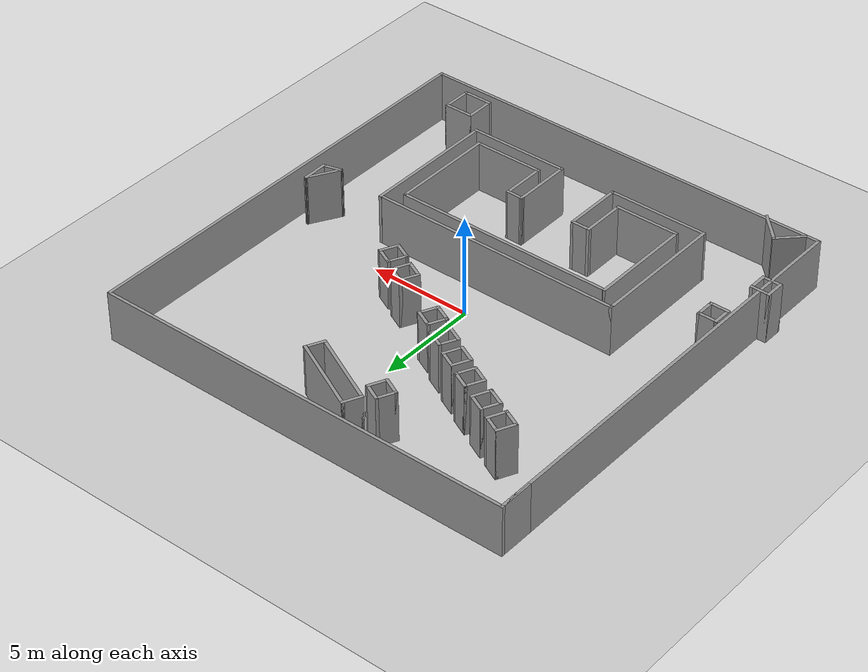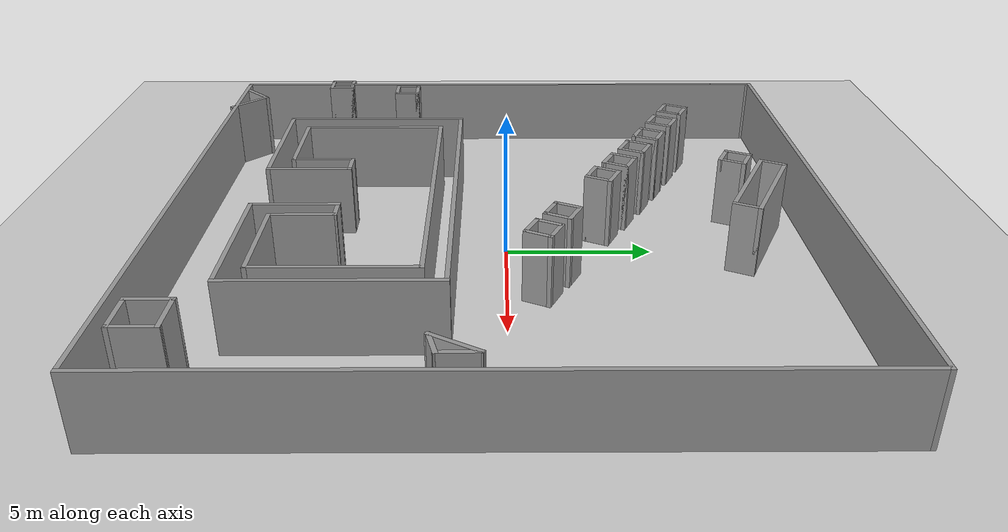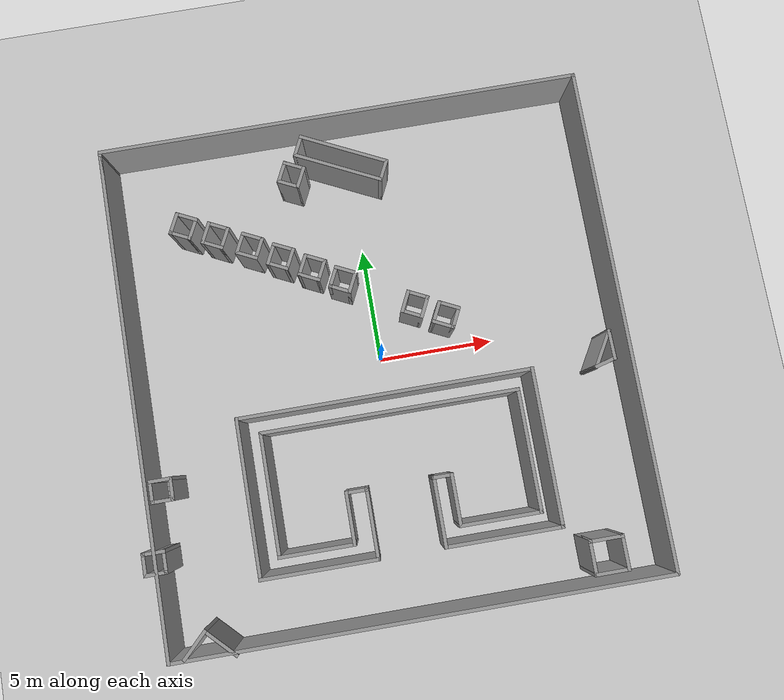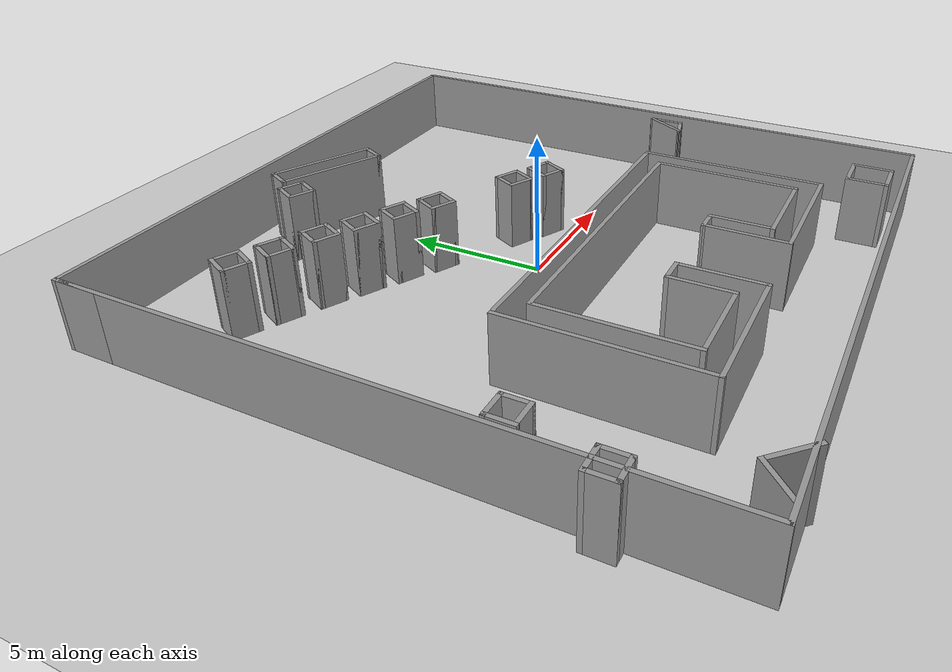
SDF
<sdf version="1.7">
 <world name="default">
  <light name="sun" type="directional">
   <pose>0 0 10 0 -0 0</pose>
   <diffuse>0.8 0.8 0.8 1</diffuse>
   <specular>0.2 0.2 0.2 1</specular>
   <attenuation>
    <range>1000</range>
    <constant>0.9</constant>
    <linear>0.01</linear>
    <quadratic>0.001</quadratic>
   </attenuation>
   <direction>-0.5 0.1 -0.9</direction>
   <spot><inner_angle>0</inner_angle><outer_angle>0</outer_angle><falloff>0</falloff></spot>
  </light>
  <model name="ground_plane">
   <static>1</static>
   <link name="link">
    <collision name="collision">
     <geometry><plane><normal>0 0 1</normal><size>100 100</size></plane></geometry>
     <surface>
      <contact><collide_bitmask>65535</collide_bitmask></contact>
      <friction><ode><mu>100</mu><mu2>50</mu2></ode></friction>
     </surface>
    </collision>
    <visual name="visual">
     <cast_shadows>0</cast_shadows>
     <geometry><plane><normal>0 0 1</normal><size>100 100</size></plane></geometry>
     <material>
      <script><uri>file://media/materials/scripts/gazebo.material</uri><name>Gazebo/Grey</name></script>
     </material>
    </visual>
   </link>
  </model>
  <gravity>0 0 -9.8</gravity>
  <magnetic_field>6e-06 2.3e-05 -4.2e-05</magnetic_field>
  <atmosphere type="adiabatic"/>
  <physics type="ode">
   <max_step_size>0.001</max_step_size>
   <real_time_factor>1</real_time_factor>
   <real_time_update_rate>1000</real_time_update_rate>
  </physics>
  <scene><ambient>0.4 0.4 0.4 1</ambient><background>0.7 0.7 0.7 1</background><shadows>1</shadows></scene>
  <spherical_coordinates>
   <surface_model>EARTH_WGS84</surface_model>
   <latitude_deg>0</latitude_deg>
   <longitude_deg>0</longitude_deg>
   <elevation>0</elevation>
   <heading_deg>0</heading_deg>
  </spherical_coordinates>
  <model name="ushape">
   <pose>-0.15366 -5.01708 0 0 -0 0</pose>
   <link name="Wall_10">
    <collision name="Wall_10_Collision">
     <geometry><box><size>3 0.15 2.5</size></box></geometry>
     <pose>0 0 1.25 0 -0 0</pose>
    </collision>
    <visual name="Wall_10_Visual">
     <pose>0 0 1.25 0 -0 0</pose>
     <geometry><box><size>3 0.15 2.5</size></box></geometry>
     <material>
      <script><uri>file://media/materials/scripts/gazebo.material</uri><name>Gazebo/Grey</name></script>
      <ambient>1 1 1 1</ambient>
     </material>
     <meta><layer>0</layer></meta>
    </visual>
    <pose>1.40095 -1.87068 0 0 -0 -1.5708</pose>
   </link>
   <link name="Wall_13">
    <collision name="Wall_13_Collision">
     <geometry><box><size>5 0.15 2.5</size></box></geometry>
     <pose>0 0 1.25 0 -0 0</pose>
    </collision>
    <visual name="Wall_13_Visual">
     <pose>0 0 1.25 0 -0 0</pose>
     <geometry><box><size>5 0.15 2.5</size></box></geometry>
     <material>
      <script><uri>file://media/materials/scripts/gazebo.material</uri><name>Gazebo/Grey</name></script>
      <ambient>1 1 1 1</ambient>
     </material>
     <meta><layer>0</layer></meta>
    </visual>
    <pose>3.82595 -3.29568 0 0 -0 0</pose>
   </link>
   <link name="Wall_14">
    <collision name="Wall_14_Collision">
     <geometry><box><size>6.75 0.15 2.5</size></box></geometry>
     <pose>0 0 1.25 0 -0 0</pose>
    </collision>
    <visual name="Wall_14_Visual">
     <pose>0 0 1.25 0 -0 0</pose>
     <geometry><box><size>6.75 0.15 2.5</size></box></geometry>
     <material>
      <script><uri>file://media/materials/scripts/gazebo.material</uri><name>Gazebo/Grey</name></script>
      <ambient>1 1 1 1</ambient>
     </material>
     <meta><layer>0</layer></meta>
    </visual>
    <pose>6.25095 0.004322 0 0 -0 1.5708</pose>
   </link>
   <link name="Wall_16">
    <collision name="Wall_16_Collision">
     <geometry><box><size>1 0.15 2.5</size></box></geometry>
     <pose>0 0 1.25 0 -0 0</pose>
    </collision>
    <visual name="Wall_16_Visual">
     <pose>0 0 1.25 0 -0 0</pose>
     <geometry><box><size>1 0.15 2.5</size></box></geometry>
     <material>
      <script><uri>file://media/materials/scripts/gazebo.material</uri><name>Gazebo/Grey</name></script>
      <ambient>1 1 1 1</ambient>
     </material>
     <meta><layer>0</layer></meta>
    </visual>
    <pose>-1.82595 -0.454322 0 0 -0 3.14159</pose>
   </link>
   <link name="Wall_18">
    <collision name="Wall_18_Collision">
     <geometry><box><size>2.25 0.15 2.5</size></box></geometry>
     <pose>0 0 1.25 0 -0 0</pose>
    </collision>
    <visual name="Wall_18_Visual">
     <pose>0 0 1.25 0 -0 0</pose>
     <geometry><box><size>2.25 0.15 2.5</size></box></geometry>
     <material>
      <script><uri>file://media/materials/scripts/gazebo.material</uri><name>Gazebo/Grey</name></script>
      <ambient>1 1 1 1</ambient>
     </material>
     <meta><layer>0</layer></meta>
    </visual>
    <pose>-2.25095 -1.50432 0 0 -0 -1.5708</pose>
   </link>
   <link name="Wall_19">
    <collision name="Wall_19_Collision">
     <geometry><box><size>3.25 0.15 2.5</size></box></geometry>
     <pose>0 0 1.25 0 -0 0</pose>
    </collision>
    <visual name="Wall_19_Visual">
     <pose>0 0 1.25 0 -0 0</pose>
     <geometry><box><size>3.25 0.15 2.5</size></box></geometry>
     <material>
      <script><uri>file://media/materials/scripts/gazebo.material</uri><name>Gazebo/Grey</name></script>
      <ambient>1 1 1 1</ambient>
     </material>
     <meta><layer>0</layer></meta>
    </visual>
    <pose>-3.80095 -2.55432 0 0 -0 3.14159</pose>
   </link>
   <link name="Wall_2">
    <collision name="Wall_2_Collision">
     <geometry><box><size>3 0.15 2.5</size></box></geometry>
     <pose>0 0 1.25 0 -0 0</pose>
    </collision>
    <visual name="Wall_2_Visual">
     <pose>0 0 1.25 0 -0 0</pose>
     <geometry><box><size>3 0.15 2.5</size></box></geometry>
     <material>
      <script><uri>file://media/materials/scripts/gazebo.material</uri><name>Gazebo/Grey</name></script>
      <ambient>1 1 1 1</ambient>
     </material>
     <meta><layer>0</layer></meta>
    </visual>
    <pose>-1.40095 -1.87932 0 0 -0 -1.5708</pose>
   </link>
   <link name="Wall_20">
    <collision name="Wall_20_Collision">
     <geometry><box><size>5.25 0.15 2.5</size></box></geometry>
     <pose>0 0 1.25 0 -0 0</pose>
    </collision>
    <visual name="Wall_20_Visual">
     <pose>0 0 1.25 0 -0 0</pose>
     <geometry><box><size>5.25 0.15 2.5</size></box></geometry>
     <material>
      <script><uri>file://media/materials/scripts/gazebo.material</uri><name>Gazebo/Grey</name></script>
      <ambient>1 1 1 1</ambient>
     </material>
     <meta><layer>0</layer></meta>
    </visual>
    <pose>-5.35095 -0.004322 0 0 -0 1.5708</pose>
   </link>
   <link name="Wall_21">
    <collision name="Wall_21_Collision">
     <geometry><box><size>11 0.15 2.5</size></box></geometry>
     <pose>0 0 1.25 0 -0 0</pose>
    </collision>
    <visual name="Wall_21_Visual">
     <pose>0 0 1.25 0 -0 0</pose>
     <geometry><box><size>11 0.15 2.5</size></box></geometry>
     <material>
      <script><uri>file://media/materials/scripts/gazebo.material</uri><name>Gazebo/Grey</name></script>
      <ambient>1 1 1 1</ambient>
     </material>
     <meta><layer>0</layer></meta>
    </visual>
    <pose>0.074047 2.54568 0 0 -0 0</pose>
   </link>
   <link name="Wall_22">
    <collision name="Wall_22_Collision">
     <geometry><box><size>5.25 0.15 2.5</size></box></geometry>
     <pose>0 0 1.25 0 -0 0</pose>
    </collision>
    <visual name="Wall_22_Visual">
     <pose>0 0 1.25 0 -0 0</pose>
     <geometry><box><size>5.25 0.15 2.5</size></box></geometry>
     <material>
      <script><uri>file://media/materials/scripts/gazebo.material</uri><name>Gazebo/Grey</name></script>
      <ambient>1 1 1 1</ambient>
     </material>
     <meta><layer>0</layer></meta>
    </visual>
    <pose>5.49905 -0.004322 0 0 -0 -1.5708</pose>
   </link>
   <link name="Wall_23">
    <collision name="Wall_23_Collision">
     <geometry><box><size>3.5 0.15 2.5</size></box></geometry>
     <pose>0 0 1.25 0 -0 0</pose>
    </collision>
    <visual name="Wall_23_Visual">
     <pose>0 0 1.25 0 -0 0</pose>
     <geometry><box><size>3.5 0.15 2.5</size></box></geometry>
     <material>
      <script><uri>file://media/materials/scripts/gazebo.material</uri><name>Gazebo/Grey</name></script>
      <ambient>1 1 1 1</ambient>
     </material>
     <meta><layer>0</layer></meta>
    </visual>
    <pose>3.82405 -2.55432 0 0 -0 3.14159</pose>
   </link>
   <link name="Wall_24">
    <collision name="Wall_24_Collision">
     <geometry><box><size>2.25 0.15 2.5</size></box></geometry>
     <pose>0 0 1.25 0 -0 0</pose>
    </collision>
    <visual name="Wall_24_Visual">
     <pose>0 0 1.25 0 -0 0</pose>
     <geometry><box><size>2.25 0.15 2.5</size></box></geometry>
     <material>
      <script><uri>file://media/materials/scripts/gazebo.material</uri><name>Gazebo/Grey</name></script>
      <ambient>1 1 1 1</ambient>
     </material>
     <meta><layer>0</layer></meta>
    </visual>
    <pose>2.14905 -1.50432 0 0 -0 1.5708</pose>
   </link>
   <link name="Wall_25">
    <collision name="Wall_25_Collision">
     <geometry><box><size>0.898144 0.15 2.5</size></box></geometry>
     <pose>0 0 1.25 0 -0 0</pose>
    </collision>
    <visual name="Wall_25_Visual">
     <pose>0 0 1.25 0 -0 0</pose>
     <geometry><box><size>0.898144 0.15 2.5</size></box></geometry>
     <material>
      <script><uri>file://media/materials/scripts/gazebo.material</uri><name>Gazebo/Grey</name></script>
      <ambient>1 1 1 1</ambient>
     </material>
     <meta><layer>0</layer></meta>
    </visual>
    <pose>1.775 -0.45 0 0 -0 3.13004</pose>
   </link>
   <link name="Wall_3">
    <collision name="Wall_3_Collision">
     <geometry><box><size>5 0.15 2.5</size></box></geometry>
     <pose>0 0 1.25 0 -0 0</pose>
    </collision>
    <visual name="Wall_3_Visual">
     <pose>0 0 1.25 0 -0 0</pose>
     <geometry><box><size>5 0.15 2.5</size></box></geometry>
     <material>
      <script><uri>file://media/materials/scripts/gazebo.material</uri><name>Gazebo/Grey</name></script>
      <ambient>1 1 1 1</ambient>
     </material>
     <meta><layer>0</layer></meta>
    </visual>
    <pose>-3.82595 -3.30432 0 0 -0 3.14159</pose>
   </link>
   <link name="Wall_5">
    <collision name="Wall_5_Collision">
     <geometry><box><size>6.75 0.15 2.5</size></box></geometry>
     <pose>0 0 1.25 0 -0 0</pose>
    </collision>
    <visual name="Wall_5_Visual">
     <pose>0 0 1.25 0 -0 0</pose>
     <geometry><box><size>6.75 0.15 2.5</size></box></geometry>
     <material>
      <script><uri>file://media/materials/scripts/gazebo.material</uri><name>Gazebo/Grey</name></script>
      <ambient>1 1 1 1</ambient>
     </material>
     <meta><layer>0</layer></meta>
    </visual>
    <pose>-6.25095 -0.004322 0 0 -0 1.5708</pose>
   </link>
   <link name="Wall_6">
    <collision name="Wall_6_Collision">
     <geometry><box><size>12.5 0.15 2.5</size></box></geometry>
     <pose>0 0 1.25 0 -0 0</pose>
    </collision>
    <visual name="Wall_6_Visual">
     <pose>0 0 1.25 0 -0 0</pose>
     <geometry><box><size>12.5 0.15 2.5</size></box></geometry>
     <material>
      <script><uri>file://media/materials/scripts/gazebo.material</uri><name>Gazebo/Grey</name></script>
      <ambient>1 1 1 1</ambient>
     </material>
     <meta><layer>0</layer></meta>
    </visual>
    <pose>-0.075953 3.29568 0 0 -0 0</pose>
   </link>
   <static>1</static>
  </model>
  <model name="box1m_clone">
   <pose>-2.54909 5.40798 0 0 0 -0.45328</pose>
   <link name="Wall_0">
    <collision name="Wall_0_Collision">
     <geometry><box><size>1 0.15 2.5</size></box></geometry>
     <pose>0 0 1.25 0 -0 0</pose>
    </collision>
    <visual name="Wall_0_Visual">
     <pose>0 0 1.25 0 -0 0</pose>
     <geometry><box><size>1 0.15 2.5</size></box></geometry>
     <material>
      <script><uri>file://media/materials/scripts/gazebo.material</uri><name>Gazebo/Grey</name></script>
      <ambient>1 1 1 1</ambient>
     </material>
     <meta><layer>0</layer></meta>
    </visual>
    <pose>-1.0425 -0.9775 0 0 -0 -1.5708</pose>
   </link>
   <link name="Wall_1">
    <collision name="Wall_1_Collision">
     <geometry><box><size>1 0.15 2.5</size></box></geometry>
     <pose>0 0 1.25 0 -0 0</pose>
    </collision>
    <visual name="Wall_1_Visual">
     <pose>0 0 1.25 0 -0 0</pose>
     <geometry><box><size>1 0.15 2.5</size></box></geometry>
     <material>
      <script><uri>file://media/materials/scripts/gazebo.material</uri><name>Gazebo/Grey</name></script>
      <ambient>1 1 1 1</ambient>
     </material>
     <meta><layer>0</layer></meta>
    </visual>
    <pose>-0.6175 -1.4025 0 0 -0 0</pose>
   </link>
   <link name="Wall_2">
    <collision name="Wall_2_Collision">
     <geometry><box><size>1 0.15 2.5</size></box></geometry>
     <pose>0 0 1.25 0 -0 0</pose>
    </collision>
    <visual name="Wall_2_Visual">
     <pose>0 0 1.25 0 -0 0</pose>
     <geometry><box><size>1 0.15 2.5</size></box></geometry>
     <material>
      <script><uri>file://media/materials/scripts/gazebo.material</uri><name>Gazebo/Grey</name></script>
      <ambient>1 1 1 1</ambient>
     </material>
     <meta><layer>0</layer></meta>
    </visual>
    <pose>-0.1925 -0.9775 0 0 -0 1.5708</pose>
   </link>
   <link name="Wall_3">
    <collision name="Wall_3_Collision">
     <geometry><box><size>1 0.15 2.5</size></box></geometry>
     <pose>0 0 1.25 0 -0 0</pose>
    </collision>
    <visual name="Wall_3_Visual">
     <pose>0 0 1.25 0 -0 0</pose>
     <geometry><box><size>1 0.15 2.5</size></box></geometry>
     <material>
      <script><uri>file://media/materials/scripts/gazebo.material</uri><name>Gazebo/Grey</name></script>
      <ambient>1 1 1 1</ambient>
     </material>
     <meta><layer>0</layer></meta>
    </visual>
    <pose>-0.6175 -0.5525 0 0 -0 3.14159</pose>
   </link>
   <static>1</static>
  </model>
  <model name="box1m_clone_clone">
   <pose>-3.78041 6.08694 0 0 0 -0.45328</pose>
   <link name="Wall_0">
    <collision name="Wall_0_Collision">
     <geometry><box><size>1 0.15 2.5</size></box></geometry>
     <pose>0 0 1.25 0 -0 0</pose>
    </collision>
    <visual name="Wall_0_Visual">
     <pose>0 0 1.25 0 -0 0</pose>
     <geometry><box><size>1 0.15 2.5</size></box></geometry>
     <material>
      <script><uri>file://media/materials/scripts/gazebo.material</uri><name>Gazebo/Grey</name></script>
      <ambient>1 1 1 1</ambient>
     </material>
     <meta><layer>0</layer></meta>
    </visual>
    <pose>-1.0425 -0.9775 0 0 -0 -1.5708</pose>
   </link>
   <link name="Wall_1">
    <collision name="Wall_1_Collision">
     <geometry><box><size>1 0.15 2.5</size></box></geometry>
     <pose>0 0 1.25 0 -0 0</pose>
    </collision>
    <visual name="Wall_1_Visual">
     <pose>0 0 1.25 0 -0 0</pose>
     <geometry><box><size>1 0.15 2.5</size></box></geometry>
     <material>
      <script><uri>file://media/materials/scripts/gazebo.material</uri><name>Gazebo/Grey</name></script>
      <ambient>1 1 1 1</ambient>
     </material>
     <meta><layer>0</layer></meta>
    </visual>
    <pose>-0.6175 -1.4025 0 0 -0 0</pose>
   </link>
   <link name="Wall_2">
    <collision name="Wall_2_Collision">
     <geometry><box><size>1 0.15 2.5</size></box></geometry>
     <pose>0 0 1.25 0 -0 0</pose>
    </collision>
    <visual name="Wall_2_Visual">
     <pose>0 0 1.25 0 -0 0</pose>
     <geometry><box><size>1 0.15 2.5</size></box></geometry>
     <material>
      <script><uri>file://media/materials/scripts/gazebo.material</uri><name>Gazebo/Grey</name></script>
      <ambient>1 1 1 1</ambient>
     </material>
     <meta><layer>0</layer></meta>
    </visual>
    <pose>-0.1925 -0.9775 0 0 -0 1.5708</pose>
   </link>
   <link name="Wall_3">
    <collision name="Wall_3_Collision">
     <geometry><box><size>1 0.15 2.5</size></box></geometry>
     <pose>0 0 1.25 0 -0 0</pose>
    </collision>
    <visual name="Wall_3_Visual">
     <pose>0 0 1.25 0 -0 0</pose>
     <geometry><box><size>1 0.15 2.5</size></box></geometry>
     <material>
      <script><uri>file://media/materials/scripts/gazebo.material</uri><name>Gazebo/Grey</name></script>
      <ambient>1 1 1 1</ambient>
     </material>
     <meta><layer>0</layer></meta>
    </visual>
    <pose>-0.6175 -0.5525 0 0 -0 3.14159</pose>
   </link>
   <static>1</static>
  </model>
  <model name="box1m_clone_clone_0">
   <pose>-5.15726 6.78051 0 0 0 -0.45328</pose>
   <link name="Wall_0">
    <collision name="Wall_0_Collision">
     <geometry><box><size>1 0.15 2.5</size></box></geometry>
     <pose>0 0 1.25 0 -0 0</pose>
    </collision>
    <visual name="Wall_0_Visual">
     <pose>0 0 1.25 0 -0 0</pose>
     <geometry><box><size>1 0.15 2.5</size></box></geometry>
     <material>
      <script><uri>file://media/materials/scripts/gazebo.material</uri><name>Gazebo/Grey</name></script>
      <ambient>1 1 1 1</ambient>
     </material>
     <meta><layer>0</layer></meta>
    </visual>
    <pose>-1.0425 -0.9775 0 0 -0 -1.5708</pose>
   </link>
   <link name="Wall_1">
    <collision name="Wall_1_Collision">
     <geometry><box><size>1 0.15 2.5</size></box></geometry>
     <pose>0 0 1.25 0 -0 0</pose>
    </collision>
    <visual name="Wall_1_Visual">
     <pose>0 0 1.25 0 -0 0</pose>
     <geometry><box><size>1 0.15 2.5</size></box></geometry>
     <material>
      <script><uri>file://media/materials/scripts/gazebo.material</uri><name>Gazebo/Grey</name></script>
      <ambient>1 1 1 1</ambient>
     </material>
     <meta><layer>0</layer></meta>
    </visual>
    <pose>-0.6175 -1.4025 0 0 -0 0</pose>
   </link>
   <link name="Wall_2">
    <collision name="Wall_2_Collision">
     <geometry><box><size>1 0.15 2.5</size></box></geometry>
     <pose>0 0 1.25 0 -0 0</pose>
    </collision>
    <visual name="Wall_2_Visual">
     <pose>0 0 1.25 0 -0 0</pose>
     <geometry><box><size>1 0.15 2.5</size></box></geometry>
     <material>
      <script><uri>file://media/materials/scripts/gazebo.material</uri><name>Gazebo/Grey</name></script>
      <ambient>1 1 1 1</ambient>
     </material>
     <meta><layer>0</layer></meta>
    </visual>
    <pose>-0.1925 -0.9775 0 0 -0 1.5708</pose>
   </link>
   <link name="Wall_3">
    <collision name="Wall_3_Collision">
     <geometry><box><size>1 0.15 2.5</size></box></geometry>
     <pose>0 0 1.25 0 -0 0</pose>
    </collision>
    <visual name="Wall_3_Visual">
     <pose>0 0 1.25 0 -0 0</pose>
     <geometry><box><size>1 0.15 2.5</size></box></geometry>
     <material>
      <script><uri>file://media/materials/scripts/gazebo.material</uri><name>Gazebo/Grey</name></script>
      <ambient>1 1 1 1</ambient>
     </material>
     <meta><layer>0</layer></meta>
    </visual>
    <pose>-0.6175 -0.5525 0 0 -0 3.14159</pose>
   </link>
   <static>1</static>
  </model>
  <model name="box1m_clone_clone_1">
   <pose>-1.3059 4.70204 0 0 0 -0.45328</pose>
   <link name="Wall_0">
    <collision name="Wall_0_Collision">
     <geometry><box><size>1 0.15 2.5</size></box></geometry>
     <pose>0 0 1.25 0 -0 0</pose>
    </collision>
    <visual name="Wall_0_Visual">
     <pose>0 0 1.25 0 -0 0</pose>
     <geometry><box><size>1 0.15 2.5</size></box></geometry>
     <material>
      <script><uri>file://media/materials/scripts/gazebo.material</uri><name>Gazebo/Grey</name></script>
      <ambient>1 1 1 1</ambient>
     </material>
     <meta><layer>0</layer></meta>
    </visual>
    <pose>-1.0425 -0.9775 0 0 -0 -1.5708</pose>
   </link>
   <link name="Wall_1">
    <collision name="Wall_1_Collision">
     <geometry><box><size>1 0.15 2.5</size></box></geometry>
     <pose>0 0 1.25 0 -0 0</pose>
    </collision>
    <visual name="Wall_1_Visual">
     <pose>0 0 1.25 0 -0 0</pose>
     <geometry><box><size>1 0.15 2.5</size></box></geometry>
     <material>
      <script><uri>file://media/materials/scripts/gazebo.material</uri><name>Gazebo/Grey</name></script>
      <ambient>1 1 1 1</ambient>
     </material>
     <meta><layer>0</layer></meta>
    </visual>
    <pose>-0.6175 -1.4025 0 0 -0 0</pose>
   </link>
   <link name="Wall_2">
    <collision name="Wall_2_Collision">
     <geometry><box><size>1 0.15 2.5</size></box></geometry>
     <pose>0 0 1.25 0 -0 0</pose>
    </collision>
    <visual name="Wall_2_Visual">
     <pose>0 0 1.25 0 -0 0</pose>
     <geometry><box><size>1 0.15 2.5</size></box></geometry>
     <material>
      <script><uri>file://media/materials/scripts/gazebo.material</uri><name>Gazebo/Grey</name></script>
      <ambient>1 1 1 1</ambient>
     </material>
     <meta><layer>0</layer></meta>
    </visual>
    <pose>-0.1925 -0.9775 0 0 -0 1.5708</pose>
   </link>
   <link name="Wall_3">
    <collision name="Wall_3_Collision">
     <geometry><box><size>1 0.15 2.5</size></box></geometry>
     <pose>0 0 1.25 0 -0 0</pose>
    </collision>
    <visual name="Wall_3_Visual">
     <pose>0 0 1.25 0 -0 0</pose>
     <geometry><box><size>1 0.15 2.5</size></box></geometry>
     <material>
      <script><uri>file://media/materials/scripts/gazebo.material</uri><name>Gazebo/Grey</name></script>
      <ambient>1 1 1 1</ambient>
     </material>
     <meta><layer>0</layer></meta>
    </visual>
    <pose>-0.6175 -0.5525 0 0 -0 3.14159</pose>
   </link>
   <static>1</static>
  </model>
  <model name="box1m_clone_clone_2">
   <pose>-0.098733 3.97879 0 0 0 -0.45328</pose>
   <link name="Wall_0">
    <collision name="Wall_0_Collision">
     <geometry><box><size>1 0.15 2.5</size></box></geometry>
     <pose>0 0 1.25 0 -0 0</pose>
    </collision>
    <visual name="Wall_0_Visual">
     <pose>0 0 1.25 0 -0 0</pose>
     <geometry><box><size>1 0.15 2.5</size></box></geometry>
     <material>
      <script><uri>file://media/materials/scripts/gazebo.material</uri><name>Gazebo/Grey</name></script>
      <ambient>1 1 1 1</ambient>
     </material>
     <meta><layer>0</layer></meta>
    </visual>
    <pose>-1.0425 -0.9775 0 0 -0 -1.5708</pose>
   </link>
   <link name="Wall_1">
    <collision name="Wall_1_Collision">
     <geometry><box><size>1 0.15 2.5</size></box></geometry>
     <pose>0 0 1.25 0 -0 0</pose>
    </collision>
    <visual name="Wall_1_Visual">
     <pose>0 0 1.25 0 -0 0</pose>
     <geometry><box><size>1 0.15 2.5</size></box></geometry>
     <material>
      <script><uri>file://media/materials/scripts/gazebo.material</uri><name>Gazebo/Grey</name></script>
      <ambient>1 1 1 1</ambient>
     </material>
     <meta><layer>0</layer></meta>
    </visual>
    <pose>-0.6175 -1.4025 0 0 -0 0</pose>
   </link>
   <link name="Wall_2">
    <collision name="Wall_2_Collision">
     <geometry><box><size>1 0.15 2.5</size></box></geometry>
     <pose>0 0 1.25 0 -0 0</pose>
    </collision>
    <visual name="Wall_2_Visual">
     <pose>0 0 1.25 0 -0 0</pose>
     <geometry><box><size>1 0.15 2.5</size></box></geometry>
     <material>
      <script><uri>file://media/materials/scripts/gazebo.material</uri><name>Gazebo/Grey</name></script>
      <ambient>1 1 1 1</ambient>
     </material>
     <meta><layer>0</layer></meta>
    </visual>
    <pose>-0.1925 -0.9775 0 0 -0 1.5708</pose>
   </link>
   <link name="Wall_3">
    <collision name="Wall_3_Collision">
     <geometry><box><size>1 0.15 2.5</size></box></geometry>
     <pose>0 0 1.25 0 -0 0</pose>
    </collision>
    <visual name="Wall_3_Visual">
     <pose>0 0 1.25 0 -0 0</pose>
     <geometry><box><size>1 0.15 2.5</size></box></geometry>
     <material>
      <script><uri>file://media/materials/scripts/gazebo.material</uri><name>Gazebo/Grey</name></script>
      <ambient>1 1 1 1</ambient>
     </material>
     <meta><layer>0</layer></meta>
    </visual>
    <pose>-0.6175 -0.5525 0 0 -0 3.14159</pose>
   </link>
   <static>1</static>
  </model>
  <model name="box1m_clone_clone_3">
   <pose>-6.43952 7.41383 0 0 0 -0.45328</pose>
   <link name="Wall_0">
    <collision name="Wall_0_Collision">
     <geometry><box><size>1 0.15 2.5</size></box></geometry>
     <pose>0 0 1.25 0 -0 0</pose>
    </collision>
    <visual name="Wall_0_Visual">
     <pose>0 0 1.25 0 -0 0</pose>
     <geometry><box><size>1 0.15 2.5</size></box></geometry>
     <material>
      <script><uri>file://media/materials/scripts/gazebo.material</uri><name>Gazebo/Grey</name></script>
      <ambient>1 1 1 1</ambient>
     </material>
     <meta><layer>0</layer></meta>
    </visual>
    <pose>-1.0425 -0.9775 0 0 -0 -1.5708</pose>
   </link>
   <link name="Wall_1">
    <collision name="Wall_1_Collision">
     <geometry><box><size>1 0.15 2.5</size></box></geometry>
     <pose>0 0 1.25 0 -0 0</pose>
    </collision>
    <visual name="Wall_1_Visual">
     <pose>0 0 1.25 0 -0 0</pose>
     <geometry><box><size>1 0.15 2.5</size></box></geometry>
     <material>
      <script><uri>file://media/materials/scripts/gazebo.material</uri><name>Gazebo/Grey</name></script>
      <ambient>1 1 1 1</ambient>
     </material>
     <meta><layer>0</layer></meta>
    </visual>
    <pose>-0.6175 -1.4025 0 0 -0 0</pose>
   </link>
   <link name="Wall_2">
    <collision name="Wall_2_Collision">
     <geometry><box><size>1 0.15 2.5</size></box></geometry>
     <pose>0 0 1.25 0 -0 0</pose>
    </collision>
    <visual name="Wall_2_Visual">
     <pose>0 0 1.25 0 -0 0</pose>
     <geometry><box><size>1 0.15 2.5</size></box></geometry>
     <material>
      <script><uri>file://media/materials/scripts/gazebo.material</uri><name>Gazebo/Grey</name></script>
      <ambient>1 1 1 1</ambient>
     </material>
     <meta><layer>0</layer></meta>
    </visual>
    <pose>-0.1925 -0.9775 0 0 -0 1.5708</pose>
   </link>
   <link name="Wall_3">
    <collision name="Wall_3_Collision">
     <geometry><box><size>1 0.15 2.5</size></box></geometry>
     <pose>0 0 1.25 0 -0 0</pose>
    </collision>
    <visual name="Wall_3_Visual">
     <pose>0 0 1.25 0 -0 0</pose>
     <geometry><box><size>1 0.15 2.5</size></box></geometry>
     <material>
      <script><uri>file://media/materials/scripts/gazebo.material</uri><name>Gazebo/Grey</name></script>
      <ambient>1 1 1 1</ambient>
     </material>
     <meta><layer>0</layer></meta>
    </visual>
    <pose>-0.6175 -0.5525 0 0 -0 3.14159</pose>
   </link>
   <static>1</static>
  </model>
  <model name="box1m_clone_clone_4">
   <pose>2.73002 2.41831 0 0 0 -0.45328</pose>
   <link name="Wall_0">
    <collision name="Wall_0_Collision">
     <geometry><box><size>1 0.15 2.5</size></box></geometry>
     <pose>0 0 1.25 0 -0 0</pose>
    </collision>
    <visual name="Wall_0_Visual">
     <pose>0 0 1.25 0 -0 0</pose>
     <geometry><box><size>1 0.15 2.5</size></box></geometry>
     <material>
      <script><uri>file://media/materials/scripts/gazebo.material</uri><name>Gazebo/Grey</name></script>
      <ambient>1 1 1 1</ambient>
     </material>
     <meta><layer>0</layer></meta>
    </visual>
    <pose>-1.0425 -0.9775 0 0 -0 -1.5708</pose>
   </link>
   <link name="Wall_1">
    <collision name="Wall_1_Collision">
     <geometry><box><size>1 0.15 2.5</size></box></geometry>
     <pose>0 0 1.25 0 -0 0</pose>
    </collision>
    <visual name="Wall_1_Visual">
     <pose>0 0 1.25 0 -0 0</pose>
     <geometry><box><size>1 0.15 2.5</size></box></geometry>
     <material>
      <script><uri>file://media/materials/scripts/gazebo.material</uri><name>Gazebo/Grey</name></script>
      <ambient>1 1 1 1</ambient>
     </material>
     <meta><layer>0</layer></meta>
    </visual>
    <pose>-0.6175 -1.4025 0 0 -0 0</pose>
   </link>
   <link name="Wall_2">
    <collision name="Wall_2_Collision">
     <geometry><box><size>1 0.15 2.5</size></box></geometry>
     <pose>0 0 1.25 0 -0 0</pose>
    </collision>
    <visual name="Wall_2_Visual">
     <pose>0 0 1.25 0 -0 0</pose>
     <geometry><box><size>1 0.15 2.5</size></box></geometry>
     <material>
      <script><uri>file://media/materials/scripts/gazebo.material</uri><name>Gazebo/Grey</name></script>
      <ambient>1 1 1 1</ambient>
     </material>
     <meta><layer>0</layer></meta>
    </visual>
    <pose>-0.1925 -0.9775 0 0 -0 1.5708</pose>
   </link>
   <link name="Wall_3">
    <collision name="Wall_3_Collision">
     <geometry><box><size>1 0.15 2.5</size></box></geometry>
     <pose>0 0 1.25 0 -0 0</pose>
    </collision>
    <visual name="Wall_3_Visual">
     <pose>0 0 1.25 0 -0 0</pose>
     <geometry><box><size>1 0.15 2.5</size></box></geometry>
     <material>
      <script><uri>file://media/materials/scripts/gazebo.material</uri><name>Gazebo/Grey</name></script>
      <ambient>1 1 1 1</ambient>
     </material>
     <meta><layer>0</layer></meta>
    </visual>
    <pose>-0.6175 -0.5525 0 0 -0 3.14159</pose>
   </link>
   <static>1</static>
  </model>
  <model name="box1m_clone_clone_5">
   <pose>3.94843 1.74701 0 0 0 -0.45328</pose>
   <link name="Wall_0">
    <collision name="Wall_0_Collision">
     <geometry><box><size>1 0.15 2.5</size></box></geometry>
     <pose>0 0 1.25 0 -0 0</pose>
    </collision>
    <visual name="Wall_0_Visual">
     <pose>0 0 1.25 0 -0 0</pose>
     <geometry><box><size>1 0.15 2.5</size></box></geometry>
     <material>
      <script><uri>file://media/materials/scripts/gazebo.material</uri><name>Gazebo/Grey</name></script>
      <ambient>1 1 1 1</ambient>
     </material>
     <meta><layer>0</layer></meta>
    </visual>
    <pose>-1.0425 -0.9775 0 0 -0 -1.5708</pose>
   </link>
   <link name="Wall_1">
    <collision name="Wall_1_Collision">
     <geometry><box><size>1 0.15 2.5</size></box></geometry>
     <pose>0 0 1.25 0 -0 0</pose>
    </collision>
    <visual name="Wall_1_Visual">
     <pose>0 0 1.25 0 -0 0</pose>
     <geometry><box><size>1 0.15 2.5</size></box></geometry>
     <material>
      <script><uri>file://media/materials/scripts/gazebo.material</uri><name>Gazebo/Grey</name></script>
      <ambient>1 1 1 1</ambient>
     </material>
     <meta><layer>0</layer></meta>
    </visual>
    <pose>-0.6175 -1.4025 0 0 -0 0</pose>
   </link>
   <link name="Wall_2">
    <collision name="Wall_2_Collision">
     <geometry><box><size>1 0.15 2.5</size></box></geometry>
     <pose>0 0 1.25 0 -0 0</pose>
    </collision>
    <visual name="Wall_2_Visual">
     <pose>0 0 1.25 0 -0 0</pose>
     <geometry><box><size>1 0.15 2.5</size></box></geometry>
     <material>
      <script><uri>file://media/materials/scripts/gazebo.material</uri><name>Gazebo/Grey</name></script>
      <ambient>1 1 1 1</ambient>
     </material>
     <meta><layer>0</layer></meta>
    </visual>
    <pose>-0.1925 -0.9775 0 0 -0 1.5708</pose>
   </link>
   <link name="Wall_3">
    <collision name="Wall_3_Collision">
     <geometry><box><size>1 0.15 2.5</size></box></geometry>
     <pose>0 0 1.25 0 -0 0</pose>
    </collision>
    <visual name="Wall_3_Visual">
     <pose>0 0 1.25 0 -0 0</pose>
     <geometry><box><size>1 0.15 2.5</size></box></geometry>
     <material>
      <script><uri>file://media/materials/scripts/gazebo.material</uri><name>Gazebo/Grey</name></script>
      <ambient>1 1 1 1</ambient>
     </material>
     <meta><layer>0</layer></meta>
    </visual>
    <pose>-0.6175 -0.5525 0 0 -0 3.14159</pose>
   </link>
   <static>1</static>
  </model>
  <model name="box4m">
   <pose>0.08306 9.44691 0 0 0 -0.45449</pose>
   <link name="Wall_0">
    <collision name="Wall_0_Collision">
     <geometry><box><size>1 0.15 2.5</size></box></geometry>
     <pose>0 0 1.25 0 -0 0</pose>
    </collision>
    <visual name="Wall_0_Visual">
     <pose>0 0 1.25 0 -0 0</pose>
     <geometry><box><size>1 0.15 2.5</size></box></geometry>
     <material>
      <script><uri>file://media/materials/scripts/gazebo.material</uri><name>Gazebo/Grey</name></script>
      <ambient>1 1 1 1</ambient>
     </material>
     <meta><layer>0</layer></meta>
    </visual>
    <pose>-1.925 -0.8775 0 0 -0 -1.5708</pose>
   </link>
   <link name="Wall_1">
    <collision name="Wall_1_Collision">
     <geometry><box><size>4 0.15 2.5</size></box></geometry>
     <pose>0 0 1.25 0 -0 0</pose>
    </collision>
    <visual name="Wall_1_Visual">
     <pose>0 0 1.25 0 -0 0</pose>
     <geometry><box><size>4 0.15 2.5</size></box></geometry>
     <material>
      <script><uri>file://media/materials/scripts/gazebo.material</uri><name>Gazebo/Grey</name></script>
      <ambient>1 1 1 1</ambient>
     </material>
     <meta><layer>0</layer></meta>
    </visual>
    <pose>-0 -1.3025 0 0 -0 0</pose>
   </link>
   <link name="Wall_2">
    <collision name="Wall_2_Collision">
     <geometry><box><size>1 0.15 2.5</size></box></geometry>
     <pose>0 0 1.25 0 -0 0</pose>
    </collision>
    <visual name="Wall_2_Visual">
     <pose>0 0 1.25 0 -0 0</pose>
     <geometry><box><size>1 0.15 2.5</size></box></geometry>
     <material>
      <script><uri>file://media/materials/scripts/gazebo.material</uri><name>Gazebo/Grey</name></script>
      <ambient>1 1 1 1</ambient>
     </material>
     <meta><layer>0</layer></meta>
    </visual>
    <pose>1.925 -0.8775 0 0 -0 1.5708</pose>
   </link>
   <link name="Wall_3">
    <collision name="Wall_3_Collision">
     <geometry><box><size>4 0.15 2.5</size></box></geometry>
     <pose>0 0 1.25 0 -0 0</pose>
    </collision>
    <visual name="Wall_3_Visual">
     <pose>0 0 1.25 0 -0 0</pose>
     <geometry><box><size>4 0.15 2.5</size></box></geometry>
     <material>
      <script><uri>file://media/materials/scripts/gazebo.material</uri><name>Gazebo/Grey</name></script>
      <ambient>1 1 1 1</ambient>
     </material>
     <meta><layer>0</layer></meta>
    </visual>
    <pose>-0 -0.4525 0 0 -0 3.14159</pose>
   </link>
   <static>1</static>
  </model>
  <model name="box1m_clone_clone_3_clone">
   <pose>-1.54075 8.88666 0 0 0 -0.45328</pose>
   <link name="Wall_0">
    <collision name="Wall_0_Collision">
     <geometry><box><size>1 0.15 2.5</size></box></geometry>
     <pose>0 0 1.25 0 -0 0</pose>
    </collision>
    <visual name="Wall_0_Visual">
     <pose>0 0 1.25 0 -0 0</pose>
     <geometry><box><size>1 0.15 2.5</size></box></geometry>
     <material>
      <script><uri>file://media/materials/scripts/gazebo.material</uri><name>Gazebo/Grey</name></script>
      <ambient>1 1 1 1</ambient>
     </material>
     <meta><layer>0</layer></meta>
    </visual>
    <pose>-1.0425 -0.9775 0 0 -0 -1.5708</pose>
   </link>
   <link name="Wall_1">
    <collision name="Wall_1_Collision">
     <geometry><box><size>1 0.15 2.5</size></box></geometry>
     <pose>0 0 1.25 0 -0 0</pose>
    </collision>
    <visual name="Wall_1_Visual">
     <pose>0 0 1.25 0 -0 0</pose>
     <geometry><box><size>1 0.15 2.5</size></box></geometry>
     <material>
      <script><uri>file://media/materials/scripts/gazebo.material</uri><name>Gazebo/Grey</name></script>
      <ambient>1 1 1 1</ambient>
     </material>
     <meta><layer>0</layer></meta>
    </visual>
    <pose>-0.6175 -1.4025 0 0 -0 0</pose>
   </link>
   <link name="Wall_2">
    <collision name="Wall_2_Collision">
     <geometry><box><size>1 0.15 2.5</size></box></geometry>
     <pose>0 0 1.25 0 -0 0</pose>
    </collision>
    <visual name="Wall_2_Visual">
     <pose>0 0 1.25 0 -0 0</pose>
     <geometry><box><size>1 0.15 2.5</size></box></geometry>
     <material>
      <script><uri>file://media/materials/scripts/gazebo.material</uri><name>Gazebo/Grey</name></script>
      <ambient>1 1 1 1</ambient>
     </material>
     <meta><layer>0</layer></meta>
    </visual>
    <pose>-0.1925 -0.9775 0 0 -0 1.5708</pose>
   </link>
   <link name="Wall_3">
    <collision name="Wall_3_Collision">
     <geometry><box><size>1 0.15 2.5</size></box></geometry>
     <pose>0 0 1.25 0 -0 0</pose>
    </collision>
    <visual name="Wall_3_Visual">
     <pose>0 0 1.25 0 -0 0</pose>
     <geometry><box><size>1 0.15 2.5</size></box></geometry>
     <material>
      <script><uri>file://media/materials/scripts/gazebo.material</uri><name>Gazebo/Grey</name></script>
      <ambient>1 1 1 1</ambient>
     </material>
     <meta><layer>0</layer></meta>
    </visual>
    <pose>-0.6175 -0.5525 0 0 -0 3.14159</pose>
   </link>
   <static>1</static>
  </model>
  <model name="empty">
   <pose>-0.102546 -0.222685 0 0 -0 0</pose>
   <link name="Wall_11">
    <collision name="Wall_11_Collision">
     <geometry><box><size>1.5 0.15 2.5</size></box></geometry>
     <pose>0 0 1.25 0 -0 0</pose>
    </collision>
    <visual name="Wall_11_Visual">
     <pose>0 0 1.25 0 -0 0</pose>
     <geometry><box><size>1.5 0.15 2.5</size></box></geometry>
     <material>
      <script><uri>file://media/materials/scripts/gazebo.material</uri><name>Gazebo/Grey</name></script>
      <ambient>1 1 1 1</ambient>
     </material>
     <meta><layer>0</layer></meta>
    </visual>
    <pose>7.16357 -9.52869 0 0 -0 1.5708</pose>
   </link>
   <link name="Wall_12">
    <collision name="Wall_12_Collision">
     <geometry><box><size>1.5 0.15 2.5</size></box></geometry>
     <pose>0 0 1.25 0 -0 0</pose>
    </collision>
    <visual name="Wall_12_Visual">
     <pose>0 0 1.25 0 -0 0</pose>
     <geometry><box><size>1.5 0.15 2.5</size></box></geometry>
     <material>
      <script><uri>file://media/materials/scripts/gazebo.material</uri><name>Gazebo/Grey</name></script>
      <ambient>1 1 1 1</ambient>
     </material>
     <meta><layer>0</layer></meta>
    </visual>
    <pose>7.83857 -8.85369 0 0 -0 0</pose>
   </link>
   <link name="Wall_13">
    <collision name="Wall_13_Collision">
     <geometry><box><size>1.5 0.15 2.5</size></box></geometry>
     <pose>0 0 1.25 0 -0 0</pose>
    </collision>
    <visual name="Wall_13_Visual">
     <pose>0 0 1.25 0 -0 0</pose>
     <geometry><box><size>1.5 0.15 2.5</size></box></geometry>
     <material>
      <script><uri>file://media/materials/scripts/gazebo.material</uri><name>Gazebo/Grey</name></script>
      <ambient>1 1 1 1</ambient>
     </material>
     <meta><layer>0</layer></meta>
    </visual>
    <pose>8.51357 -9.52869 0 0 -0 -1.5708</pose>
   </link>
   <link name="Wall_14">
    <collision name="Wall_14_Collision">
     <geometry><box><size>1.5 0.15 2.5</size></box></geometry>
     <pose>0 0 1.25 0 -0 0</pose>
    </collision>
    <visual name="Wall_14_Visual">
     <pose>0 0 1.25 0 -0 0</pose>
     <geometry><box><size>1.5 0.15 2.5</size></box></geometry>
     <material>
      <script><uri>file://media/materials/scripts/gazebo.material</uri><name>Gazebo/Grey</name></script>
      <ambient>1 1 1 1</ambient>
     </material>
     <meta><layer>0</layer></meta>
    </visual>
    <pose>7.83857 -10.2037 0 0 -0 3.14159</pose>
   </link>
   <link name="Wall_16">
    <collision name="Wall_16_Collision">
     <geometry><box><size>1.75 0.15 2.5</size></box></geometry>
     <pose>0 0 1.25 0 -0 0</pose>
    </collision>
    <visual name="Wall_16_Visual">
     <pose>0 0 1.25 0 -0 0</pose>
     <geometry><box><size>1.75 0.15 2.5</size></box></geometry>
     <material>
      <script><uri>file://media/materials/scripts/gazebo.material</uri><name>Gazebo/Grey</name></script>
      <ambient>1 1 1 1</ambient>
     </material>
     <meta><layer>0</layer></meta>
    </visual>
    <pose>9.27586 -1.17301 0 0 -0 -2.0944</pose>
   </link>
   <link name="Wall_17">
    <collision name="Wall_17_Collision">
     <geometry><box><size>1 0.15 2.5</size></box></geometry>
     <pose>0 0 1.25 0 -0 0</pose>
    </collision>
    <visual name="Wall_17_Visual">
     <pose>0 0 1.25 0 -0 0</pose>
     <geometry><box><size>1 0.15 2.5</size></box></geometry>
     <material>
      <script><uri>file://media/materials/scripts/gazebo.material</uri><name>Gazebo/Grey</name></script>
      <ambient>1 1 1 1</ambient>
     </material>
     <meta><layer>0</layer></meta>
    </visual>
    <pose>9.28638 -1.75583 0 0 -0 0.261799</pose>
   </link>
   <link name="Wall_18">
    <collision name="Wall_18_Collision">
     <geometry><box><size>1.31583 0.15 2.5</size></box></geometry>
     <pose>0 0 1.25 0 -0 0</pose>
    </collision>
    <visual name="Wall_18_Visual">
     <pose>0 0 1.25 0 -0 0</pose>
     <geometry><box><size>1.31583 0.15 2.5</size></box></geometry>
     <material>
      <script><uri>file://media/materials/scripts/gazebo.material</uri><name>Gazebo/Grey</name></script>
      <ambient>1 1 1 1</ambient>
     </material>
     <meta><layer>0</layer></meta>
    </visual>
    <pose>9.68638 -1.06301 0 0 -0 1.58884</pose>
   </link>
   <link name="Wall_2">
    <collision name="Wall_2_Collision">
     <geometry><box><size>21.5 0.15 2.5</size></box></geometry>
     <pose>0 0 1.25 0 -0 0</pose>
    </collision>
    <visual name="Wall_2_Visual">
     <pose>0 0 1.25 0 -0 0</pose>
     <geometry><box><size>21.5 0.15 2.5</size></box></geometry>
     <material>
      <script><uri>file://media/materials/scripts/gazebo.material</uri><name>Gazebo/Grey</name></script>
      <ambient>1 1 1 1</ambient>
     </material>
     <meta><layer>0</layer></meta>
    </visual>
    <pose>-10.425 -0.048231 0 0 -0 -1.5708</pose>
   </link>
   <link name="Wall_3">
    <collision name="Wall_3_Collision">
     <geometry><box><size>21 0.15 2.5</size></box></geometry>
     <pose>0 0 1.25 0 -0 0</pose>
    </collision>
    <visual name="Wall_3_Visual">
     <pose>0 0 1.25 0 -0 0</pose>
     <geometry><box><size>21 0.15 2.5</size></box></geometry>
     <material>
      <script><uri>file://media/materials/scripts/gazebo.material</uri><name>Gazebo/Grey</name></script>
      <ambient>1 1 1 1</ambient>
     </material>
     <meta><layer>0</layer></meta>
    </visual>
    <pose>-0 -10.7232 0 0 -0 0</pose>
   </link>
   <link name="Wall_4">
    <collision name="Wall_4_Collision">
     <geometry><box><size>21.75 0.15 2.5</size></box></geometry>
     <pose>0 0 1.25 0 -0 0</pose>
    </collision>
    <visual name="Wall_4_Visual">
     <pose>0 0 1.25 0 -0 0</pose>
     <geometry><box><size>21.75 0.15 2.5</size></box></geometry>
     <material>
      <script><uri>file://media/materials/scripts/gazebo.material</uri><name>Gazebo/Grey</name></script>
      <ambient>1 1 1 1</ambient>
     </material>
     <meta><layer>0</layer></meta>
    </visual>
    <pose>10.425 0.076769 0 0 -0 1.5708</pose>
   </link>
   <link name="Wall_5">
    <collision name="Wall_5_Collision">
     <geometry><box><size>21 0.15 2.5</size></box></geometry>
     <pose>0 0 1.25 0 -0 0</pose>
    </collision>
    <visual name="Wall_5_Visual">
     <pose>0 0 1.25 0 -0 0</pose>
     <geometry><box><size>21 0.15 2.5</size></box></geometry>
     <material>
      <script><uri>file://media/materials/scripts/gazebo.material</uri><name>Gazebo/Grey</name></script>
      <ambient>1 1 1 1</ambient>
     </material>
     <meta><layer>0</layer></meta>
    </visual>
    <pose>-0 10.8768 0 0 -0 3.14159</pose>
   </link>
   <link name="Wall_6">
    <collision name="Wall_6_Collision">
     <geometry><box><size>1.75 0.15 2.5</size></box></geometry>
     <pose>0 0 1.25 0 -0 0</pose>
    </collision>
    <visual name="Wall_6_Visual">
     <pose>0 0 1.25 0 -0 0</pose>
     <geometry><box><size>1.75 0.15 2.5</size></box></geometry>
     <material>
      <script><uri>file://media/materials/scripts/gazebo.material</uri><name>Gazebo/Grey</name></script>
      <ambient>1 1 1 1</ambient>
     </material>
     <meta><layer>0</layer></meta>
    </visual>
    <pose>-10.425 10.0768 0 0 -0 -1.5708</pose>
   </link>
   <link name="Wall_8">
    <collision name="Wall_8_Collision">
     <geometry><box><size>1.5 0.15 2.5</size></box></geometry>
     <pose>0 0 1.25 0 -0 0</pose>
    </collision>
    <visual name="Wall_8_Visual">
     <pose>0 0 1.25 0 -0 0</pose>
     <geometry><box><size>1.5 0.15 2.5</size></box></geometry>
     <material>
      <script><uri>file://media/materials/scripts/gazebo.material</uri><name>Gazebo/Grey</name></script>
      <ambient>1 1 1 1</ambient>
     </material>
     <meta><layer>0</layer></meta>
    </visual>
    <pose>-9.29383 -10.1916 0 0 -0 0.785398</pose>
   </link>
   <link name="Wall_9">
    <collision name="Wall_9_Collision">
     <geometry><box><size>1.75 0.15 2.5</size></box></geometry>
     <pose>0 0 1.25 0 -0 0</pose>
    </collision>
    <visual name="Wall_9_Visual">
     <pose>0 0 1.25 0 -0 0</pose>
     <geometry><box><size>1.75 0.15 2.5</size></box></geometry>
     <material>
      <script><uri>file://media/materials/scripts/gazebo.material</uri><name>Gazebo/Grey</name></script>
      <ambient>1 1 1 1</ambient>
     </material>
     <meta><layer>0</layer></meta>
    </visual>
    <pose>-8.25085 -10.28 0 0 -0 -0.785398</pose>
   </link>
   <static>1</static>
  </model>
  <model name="box1m">
   <pose>-9.25875 -3.1138 0 0 -0 0</pose>
   <link name="Wall_0">
    <collision name="Wall_0_Collision">
     <geometry><box><size>1 0.15 2.5</size></box></geometry>
     <pose>0 0 1.25 0 -0 0</pose>
    </collision>
    <visual name="Wall_0_Visual">
     <pose>0 0 1.25 0 -0 0</pose>
     <geometry><box><size>1 0.15 2.5</size></box></geometry>
     <material>
      <script><uri>file://media/materials/scripts/gazebo.material</uri><name>Gazebo/Grey</name></script>
      <ambient>1 1 1 1</ambient>
     </material>
     <meta><layer>0</layer></meta>
    </visual>
    <pose>-1.0425 -0.9775 0 0 -0 -1.5708</pose>
   </link>
   <link name="Wall_1">
    <collision name="Wall_1_Collision">
     <geometry><box><size>1 0.15 2.5</size></box></geometry>
     <pose>0 0 1.25 0 -0 0</pose>
    </collision>
    <visual name="Wall_1_Visual">
     <pose>0 0 1.25 0 -0 0</pose>
     <geometry><box><size>1 0.15 2.5</size></box></geometry>
     <material>
      <script><uri>file://media/materials/scripts/gazebo.material</uri><name>Gazebo/Grey</name></script>
      <ambient>1 1 1 1</ambient>
     </material>
     <meta><layer>0</layer></meta>
    </visual>
    <pose>-0.6175 -1.4025 0 0 -0 0</pose>
   </link>
   <link name="Wall_2">
    <collision name="Wall_2_Collision">
     <geometry><box><size>1 0.15 2.5</size></box></geometry>
     <pose>0 0 1.25 0 -0 0</pose>
    </collision>
    <visual name="Wall_2_Visual">
     <pose>0 0 1.25 0 -0 0</pose>
     <geometry><box><size>1 0.15 2.5</size></box></geometry>
     <material>
      <script><uri>file://media/materials/scripts/gazebo.material</uri><name>Gazebo/Grey</name></script>
      <ambient>1 1 1 1</ambient>
     </material>
     <meta><layer>0</layer></meta>
    </visual>
    <pose>-0.1925 -0.9775 0 0 -0 1.5708</pose>
   </link>
   <link name="Wall_3">
    <collision name="Wall_3_Collision">
     <geometry><box><size>1 0.15 2.5</size></box></geometry>
     <pose>0 0 1.25 0 -0 0</pose>
    </collision>
    <visual name="Wall_3_Visual">
     <pose>0 0 1.25 0 -0 0</pose>
     <geometry><box><size>1 0.15 2.5</size></box></geometry>
     <material>
      <script><uri>file://media/materials/scripts/gazebo.material</uri><name>Gazebo/Grey</name></script>
      <ambient>1 1 1 1</ambient>
     </material>
     <meta><layer>0</layer></meta>
    </visual>
    <pose>-0.6175 -0.5525 0 0 -0 3.14159</pose>
   </link>
   <static>1</static>
  </model>
  <model name="box1m_0">
   <pose>-9.9299 -5.97159 0 0 -0 0</pose>
   <link name="Wall_0">
    <collision name="Wall_0_Collision">
     <geometry><box><size>1 0.15 2.5</size></box></geometry>
     <pose>0 0 1.25 0 -0 0</pose>
    </collision>
    <visual name="Wall_0_Visual">
     <pose>0 0 1.25 0 -0 0</pose>
     <geometry><box><size>1 0.15 2.5</size></box></geometry>
     <material>
      <script><uri>file://media/materials/scripts/gazebo.material</uri><name>Gazebo/Grey</name></script>
      <ambient>1 1 1 1</ambient>
     </material>
     <meta><layer>0</layer></meta>
    </visual>
    <pose>-1.0425 -0.9775 0 0 -0 -1.5708</pose>
   </link>
   <link name="Wall_1">
    <collision name="Wall_1_Collision">
     <geometry><box><size>1 0.15 2.5</size></box></geometry>
     <pose>0 0 1.25 0 -0 0</pose>
    </collision>
    <visual name="Wall_1_Visual">
     <pose>0 0 1.25 0 -0 0</pose>
     <geometry><box><size>1 0.15 2.5</size></box></geometry>
     <material>
      <script><uri>file://media/materials/scripts/gazebo.material</uri><name>Gazebo/Grey</name></script>
      <ambient>1 1 1 1</ambient>
     </material>
     <meta><layer>0</layer></meta>
    </visual>
    <pose>-0.6175 -1.4025 0 0 -0 0</pose>
   </link>
   <link name="Wall_2">
    <collision name="Wall_2_Collision">
     <geometry><box><size>1 0.15 2.5</size></box></geometry>
     <pose>0 0 1.25 0 -0 0</pose>
    </collision>
    <visual name="Wall_2_Visual">
     <pose>0 0 1.25 0 -0 0</pose>
     <geometry><box><size>1 0.15 2.5</size></box></geometry>
     <material>
      <script><uri>file://media/materials/scripts/gazebo.material</uri><name>Gazebo/Grey</name></script>
      <ambient>1 1 1 1</ambient>
     </material>
     <meta><layer>0</layer></meta>
    </visual>
    <pose>-0.1925 -0.9775 0 0 -0 1.5708</pose>
   </link>
   <link name="Wall_3">
    <collision name="Wall_3_Collision">
     <geometry><box><size>1 0.15 2.5</size></box></geometry>
     <pose>0 0 1.25 0 -0 0</pose>
    </collision>
    <visual name="Wall_3_Visual">
     <pose>0 0 1.25 0 -0 0</pose>
     <geometry><box><size>1 0.15 2.5</size></box></geometry>
     <material>
      <script><uri>file://media/materials/scripts/gazebo.material</uri><name>Gazebo/Grey</name></script>
      <ambient>1 1 1 1</ambient>
     </material>
     <meta><layer>0</layer></meta>
    </visual>
    <pose>-0.6175 -0.5525 0 0 -0 3.14159</pose>
   </link>
   <static>1</static>
  </model>
 </world>
</sdf>
